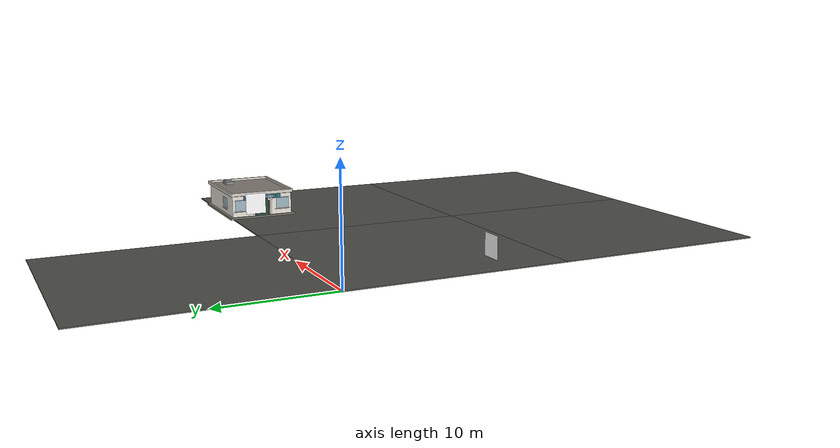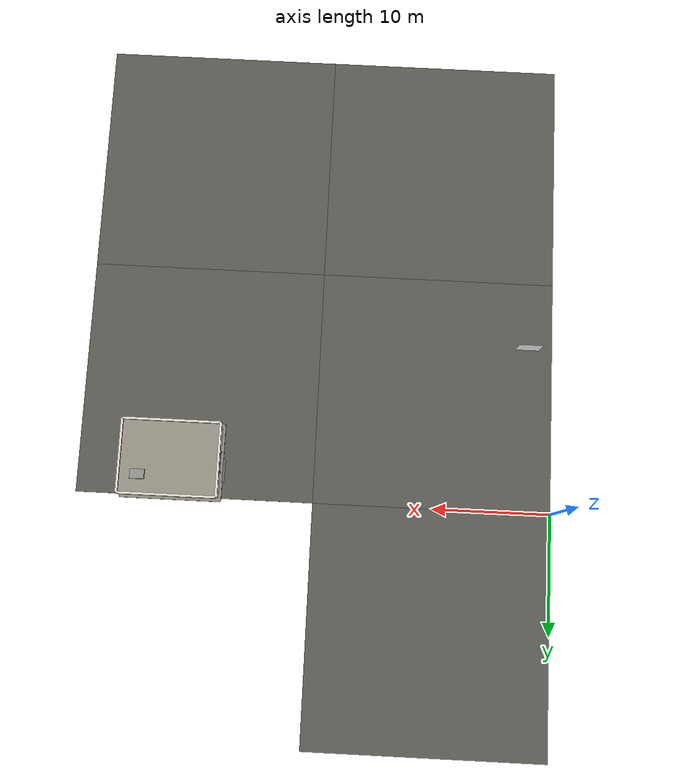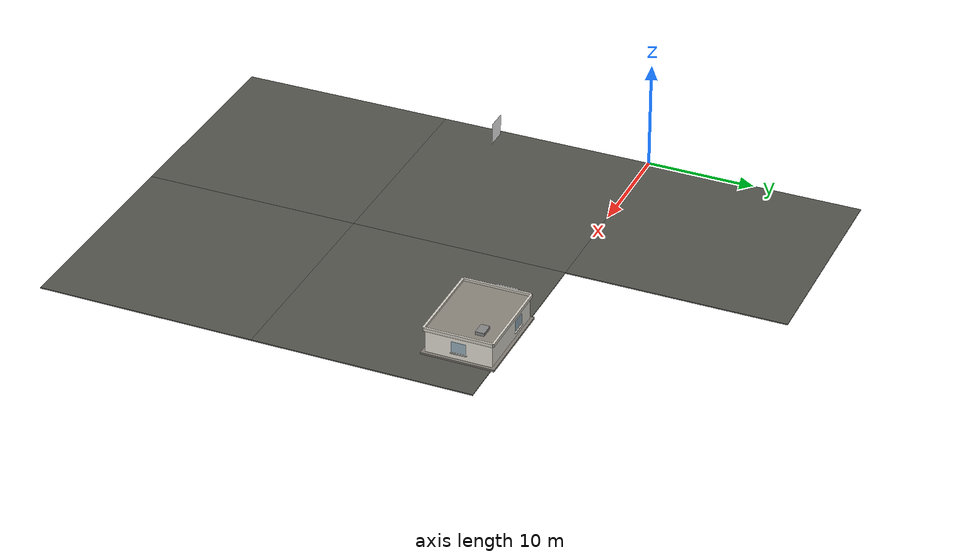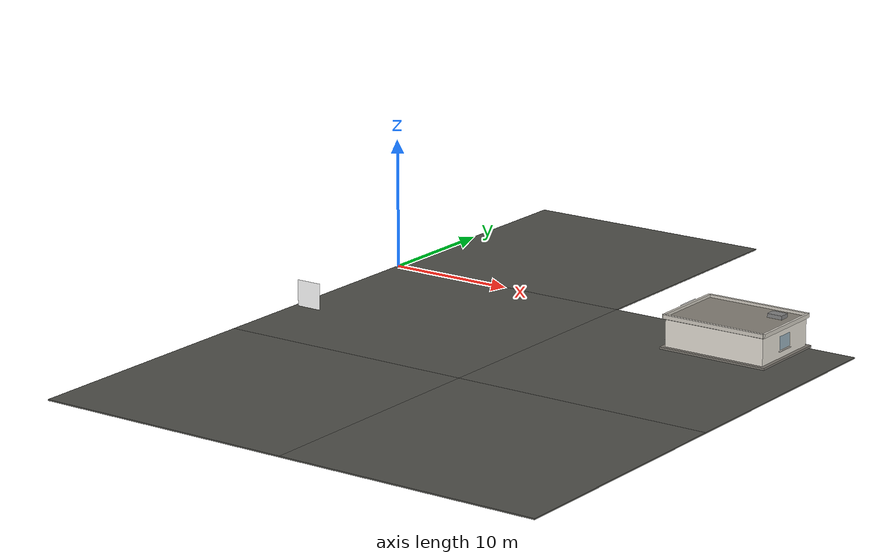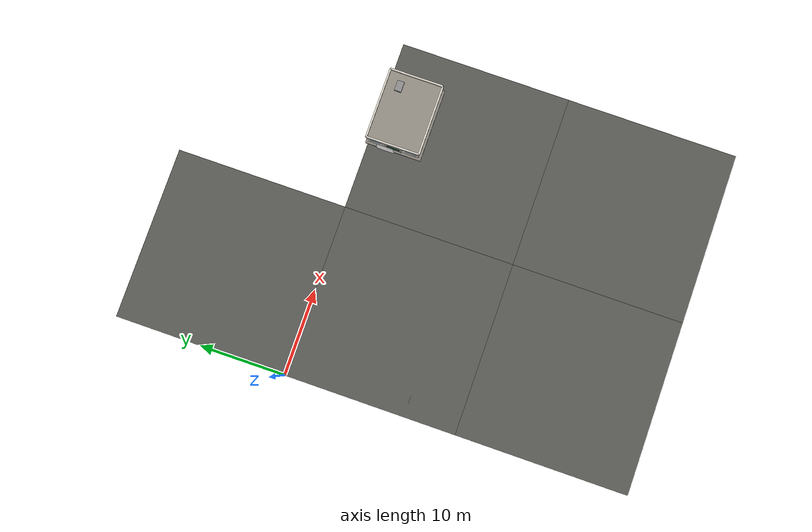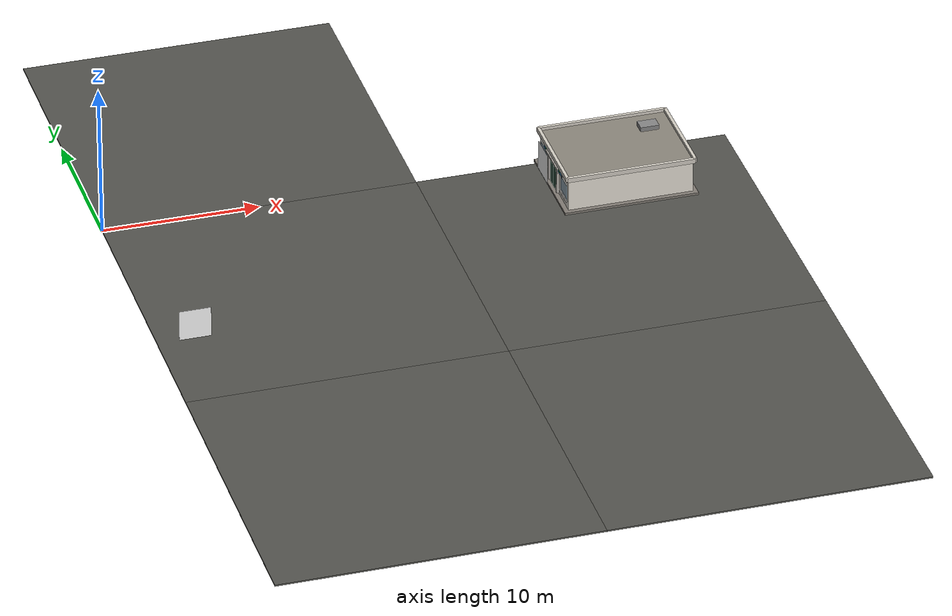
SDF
<sdf version="1.9">
 <world name="default">
  <include><name>qr7_fast_food</name><uri>model://qr7</uri><pose>2.2 -14 1.5 -1.5708 0 0</pose></include>
  <include>
   <name>qr10_community_clinic</name>
   <uri>model://qr10</uri>
   <pose>27.5 -2.2 1.5 0 -1.5708 0</pose>
  </include>
  <model name="asphalt_plane">
   <static>1</static>
   <link name="link">
    <collision name="collision"><geometry><box><size>20 20 0.1</size></box></geometry></collision>
    <visual name="visual">
     <cast_shadows>0</cast_shadows>
     <geometry><box><size>20 20 0.1</size></box></geometry>
     <material>
      <ambient>0.18 0.18 0.17 1</ambient>
      <diffuse>0.32 0.32 0.30 1</diffuse>
      <specular>0.05 0.05 0.05 1</specular>
      <emissive>0 0 0 1</emissive>
     </material>
    </visual>
    <velocity_decay><linear>0</linear><angular>0</angular></velocity_decay>
   </link>
   <pose>10 10 0 0 0 0</pose>
  </model>
  <model name="asphalt_plane_0">
   <static>1</static>
   <link name="link">
    <collision name="collision"><geometry><box><size>20 20 0.1</size></box></geometry></collision>
    <visual name="visual">
     <cast_shadows>0</cast_shadows>
     <geometry><box><size>20 20 0.1</size></box></geometry>
     <material>
      <ambient>0.18 0.18 0.17 1</ambient>
      <diffuse>0.32 0.32 0.30 1</diffuse>
      <specular>0.05 0.05 0.05 1</specular>
      <emissive>0 0 0 1</emissive>
     </material>
    </visual>
    <velocity_decay><linear>0</linear><angular>0</angular></velocity_decay>
   </link>
   <pose>10 -10 0 0 0 0</pose>
  </model>
  <model name="asphalt_plane_4">
   <static>1</static>
   <link name="link">
    <collision name="collision"><geometry><box><size>20 20 0.1</size></box></geometry></collision>
    <visual name="visual">
     <cast_shadows>0</cast_shadows>
     <geometry><box><size>20 20 0.1</size></box></geometry>
     <material>
      <ambient>0.18 0.18 0.17 1</ambient>
      <diffuse>0.32 0.32 0.30 1</diffuse>
      <specular>0.05 0.05 0.05 1</specular>
      <emissive>0 0 0 1</emissive>
     </material>
    </visual>
    <velocity_decay><linear>0</linear><angular>0</angular></velocity_decay>
   </link>
   <pose>10 -30 0 0 0 0</pose>
  </model>
  <model name="asphalt_plane_5">
   <static>1</static>
   <link name="link">
    <collision name="collision"><geometry><box><size>20 20 0.1</size></box></geometry></collision>
    <visual name="visual">
     <cast_shadows>0</cast_shadows>
     <geometry><box><size>20 20 0.1</size></box></geometry>
     <material>
      <ambient>0.18 0.18 0.17 1</ambient>
      <diffuse>0.32 0.32 0.30 1</diffuse>
      <specular>0.05 0.05 0.05 1</specular>
      <emissive>0 0 0 1</emissive>
     </material>
    </visual>
    <velocity_decay><linear>0</linear><angular>0</angular></velocity_decay>
   </link>
   <pose>30 -30 0 0 0 0</pose>
  </model>
  <model name="asphalt_plane_7">
   <static>1</static>
   <link name="link">
    <collision name="collision"><geometry><box><size>20 20 0.1</size></box></geometry></collision>
    <visual name="visual">
     <cast_shadows>0</cast_shadows>
     <geometry><box><size>20 20 0.1</size></box></geometry>
     <material>
      <ambient>0.18 0.18 0.17 1</ambient>
      <diffuse>0.32 0.32 0.30 1</diffuse>
      <specular>0.05 0.05 0.05 1</specular>
      <emissive>0 0 0 1</emissive>
     </material>
    </visual>
    <velocity_decay><linear>0</linear><angular>0</angular></velocity_decay>
   </link>
   <pose>30 -10 0 0 0 0</pose>
  </model>
  <model name="community_clinic">
   <static>true</static>
   <pose>32.0 -3.0 0 0 0 3.14159</pose>
   <link name="clinic_link">
    <visual name="foundation_visual">
     <pose>0 0 0.1 0 0 0</pose>
     <geometry><box><size>8.6 6.6 0.2</size></box></geometry>
     <material>
      <ambient>0.45 0.43 0.40 1</ambient>
      <diffuse>0.50 0.48 0.45 1</diffuse>
      <specular>0.05 0.05 0.05 1</specular>
     </material>
    </visual>
    <collision name="foundation_collision">
     <pose>0 0 0.1 0 0 0</pose>
     <geometry><box><size>8.6 6.6 0.2</size></box></geometry>
    </collision>
    <visual name="building_visual">
     <pose>0 0 1.2 0 0 0</pose>
     <geometry><box><size>8.0 6.0 2.2</size></box></geometry>
     <material>
      <ambient>0.88 0.86 0.82 1</ambient>
      <diffuse>0.90 0.88 0.84 1</diffuse>
      <specular>0.04 0.04 0.04 1</specular>
     </material>
    </visual>
    <collision name="building_collision">
     <pose>0 0 1.2 0 0 0</pose>
     <geometry><box><size>8.0 6.0 2.2</size></box></geometry>
    </collision>
    <visual name="parapet_front">
     <pose>0 3.1 2.45 0 0 0</pose>
     <geometry><box><size>8.2 0.2 0.3</size></box></geometry>
     <material><ambient>0.80 0.78 0.74 1</ambient><diffuse>0.82 0.80 0.76 1</diffuse></material>
    </visual>
    <visual name="parapet_back">
     <pose>0 -3.1 2.45 0 0 0</pose>
     <geometry><box><size>8.2 0.2 0.3</size></box></geometry>
     <material><ambient>0.80 0.78 0.74 1</ambient><diffuse>0.82 0.80 0.76 1</diffuse></material>
    </visual>
    <visual name="parapet_left">
     <pose>-4.1 0 2.45 0 0 0</pose>
     <geometry><box><size>0.2 6.2 0.3</size></box></geometry>
     <material><ambient>0.80 0.78 0.74 1</ambient><diffuse>0.82 0.80 0.76 1</diffuse></material>
    </visual>
    <visual name="parapet_right">
     <pose>4.1 0 2.45 0 0 0</pose>
     <geometry><box><size>0.2 6.2 0.3</size></box></geometry>
     <material><ambient>0.80 0.78 0.74 1</ambient><diffuse>0.82 0.80 0.76 1</diffuse></material>
    </visual>
    <visual name="roof_slab">
     <pose>0 0 2.32 0 0 0</pose>
     <geometry><box><size>8.2 6.2 0.14</size></box></geometry>
     <material><ambient>0.52 0.50 0.46 1</ambient><diffuse>0.54 0.52 0.48 1</diffuse></material>
    </visual>
    <visual name="canopy_slab">
     <pose>3.6 0 2.05 0 0 0</pose>
     <geometry><box><size>1.2 2.4 0.12</size></box></geometry>
     <material><ambient>0.75 0.73 0.70 1</ambient><diffuse>0.77 0.75 0.72 1</diffuse></material>
    </visual>
    <visual name="canopy_pillar_left">
     <pose>4.05 0.85 1.05 0 0 0</pose>
     <geometry><box><size>0.15 0.15 2.1</size></box></geometry>
     <material><ambient>0.82 0.80 0.77 1</ambient><diffuse>0.84 0.82 0.79 1</diffuse></material>
    </visual>
    <visual name="canopy_pillar_right">
     <pose>4.05 -0.85 1.05 0 0 0</pose>
     <geometry><box><size>0.15 0.15 2.1</size></box></geometry>
     <material><ambient>0.82 0.80 0.77 1</ambient><diffuse>0.84 0.82 0.79 1</diffuse></material>
    </visual>
    <visual name="door_frame">
     <pose>4.02 0 1.0 0 0 0</pose>
     <geometry><box><size>0.06 1.5 2.05</size></box></geometry>
     <material><ambient>0.20 0.18 0.16 1</ambient><diffuse>0.22 0.20 0.18 1</diffuse></material>
    </visual>
    <visual name="door_left">
     <pose>4.04 0.30 0.95 0 0 0</pose>
     <geometry><box><size>0.05 0.62 1.90</size></box></geometry>
     <material><ambient>0.14 0.26 0.20 1</ambient><diffuse>0.16 0.28 0.22 1</diffuse></material>
    </visual>
    <visual name="door_right">
     <pose>4.04 -0.30 0.95 0 0 0</pose>
     <geometry><box><size>0.05 0.62 1.90</size></box></geometry>
     <material><ambient>0.14 0.26 0.20 1</ambient><diffuse>0.16 0.28 0.22 1</diffuse></material>
    </visual>
    <visual name="door_transom">
     <pose>4.04 0 1.97 0 0 0</pose>
     <geometry><box><size>0.04 1.30 0.20</size></box></geometry>
     <material><ambient>0.55 0.70 0.75 0.65</ambient><diffuse>0.55 0.70 0.75 0.65</diffuse></material>
    </visual>
    <visual name="fw1_glass">
     <pose>4.02 2.10 1.30 0 0 0</pose>
     <geometry><box><size>0.04 1.30 1.00</size></box></geometry>
     <material><ambient>0.42 0.60 0.72 0.55</ambient><diffuse>0.42 0.60 0.72 0.55</diffuse></material>
    </visual>
    <visual name="fw1_frame_top">
     <pose>4.04 2.10 1.86 0 0 0</pose>
     <geometry><box><size>0.05 1.36 0.06</size></box></geometry>
     <material><ambient>0.92 0.92 0.90 1</ambient><diffuse>0.94 0.94 0.92 1</diffuse></material>
    </visual>
    <visual name="fw1_frame_bot">
     <pose>4.04 2.10 0.76 0 0 0</pose>
     <geometry><box><size>0.05 1.36 0.06</size></box></geometry>
     <material><ambient>0.92 0.92 0.90 1</ambient><diffuse>0.94 0.94 0.92 1</diffuse></material>
    </visual>
    <visual name="fw1_sill">
     <pose>4.06 2.10 0.71 0 0 0</pose>
     <geometry><box><size>0.12 1.50 0.05</size></box></geometry>
     <material><ambient>0.80 0.78 0.75 1</ambient><diffuse>0.82 0.80 0.77 1</diffuse></material>
    </visual>
    <visual name="fw2_glass">
     <pose>4.02 -2.10 1.30 0 0 0</pose>
     <geometry><box><size>0.04 1.30 1.00</size></box></geometry>
     <material><ambient>0.42 0.60 0.72 0.55</ambient><diffuse>0.42 0.60 0.72 0.55</diffuse></material>
    </visual>
    <visual name="fw2_frame_top">
     <pose>4.04 -2.10 1.86 0 0 0</pose>
     <geometry><box><size>0.05 1.36 0.06</size></box></geometry>
     <material><ambient>0.92 0.92 0.90 1</ambient><diffuse>0.94 0.94 0.92 1</diffuse></material>
    </visual>
    <visual name="fw2_frame_bot">
     <pose>4.04 -2.10 0.76 0 0 0</pose>
     <geometry><box><size>0.05 1.36 0.06</size></box></geometry>
     <material><ambient>0.92 0.92 0.90 1</ambient><diffuse>0.94 0.94 0.92 1</diffuse></material>
    </visual>
    <visual name="fw2_sill">
     <pose>4.06 -2.10 0.71 0 0 0</pose>
     <geometry><box><size>0.12 1.50 0.05</size></box></geometry>
     <material><ambient>0.80 0.78 0.75 1</ambient><diffuse>0.82 0.80 0.77 1</diffuse></material>
    </visual>
    <visual name="bw1_glass">
     <pose>1.5 -3.03 1.30 0 0 0</pose>
     <geometry><box><size>1.30 0.04 1.00</size></box></geometry>
     <material><ambient>0.42 0.60 0.72 0.55</ambient><diffuse>0.42 0.60 0.72 0.55</diffuse></material>
    </visual>
    <visual name="bw1_sill">
     <pose>1.5 -3.06 0.71 0 0 0</pose>
     <geometry><box><size>1.50 0.12 0.05</size></box></geometry>
     <material><ambient>0.80 0.78 0.75 1</ambient><diffuse>0.82 0.80 0.77 1</diffuse></material>
    </visual>
    <visual name="lw1_glass">
     <pose>-4.03 0 1.30 0 0 0</pose>
     <geometry><box><size>0.04 1.30 1.00</size></box></geometry>
     <material><ambient>0.42 0.60 0.72 0.55</ambient><diffuse>0.42 0.60 0.72 0.55</diffuse></material>
    </visual>
    <visual name="lw1_sill">
     <pose>-4.06 0 0.71 0 0 0</pose>
     <geometry><box><size>0.12 1.50 0.05</size></box></geometry>
     <material><ambient>0.80 0.78 0.75 1</ambient><diffuse>0.82 0.80 0.77 1</diffuse></material>
    </visual>
    <visual name="sign_bracket">
     <pose>4.05 0 2.10 0 0 0</pose>
     <geometry><box><size>0.06 3.8 0.55</size></box></geometry>
     <material><ambient>0.30 0.32 0.34 1</ambient><diffuse>0.32 0.34 0.36 1</diffuse></material>
    </visual>
    <visual name="sign_face">
     <pose>4.08 0 2.10 0 0 0</pose>
     <geometry><box><size>0.04 3.6 0.45</size></box></geometry>
     <material><ambient>0.18 0.45 0.65 1</ambient><diffuse>0.20 0.48 0.68 1</diffuse></material>
    </visual>
    <visual name="cross_h">
     <pose>4.10 1.40 2.10 0 0 0</pose>
     <geometry><box><size>0.02 0.36 0.12</size></box></geometry>
     <material>
      <ambient>0.06 0.32 0.10 1</ambient>
      <diffuse>0.10 0.60 0.20 1</diffuse>
      <emissive>0.04 0.18 0.06 1</emissive>
     </material>
    </visual>
    <visual name="cross_v">
     <pose>4.10 1.40 2.10 0 0 0</pose>
     <geometry><box><size>0.02 0.12 0.36</size></box></geometry>
     <material>
      <ambient>0.06 0.32 0.10 1</ambient>
      <diffuse>0.10 0.60 0.20 1</diffuse>
      <emissive>0.04 0.18 0.06 1</emissive>
     </material>
    </visual>
    <visual name="pharmacy_cross_door_h">
     <pose>4.10 -1.40 2.10 0 0 0</pose>
     <geometry><box><size>0.02 0.36 0.12</size></box></geometry>
     <material>
      <ambient>0.06 0.32 0.10 1</ambient>
      <diffuse>0.10 0.60 0.20 1</diffuse>
      <emissive>0.04 0.18 0.06 1</emissive>
     </material>
    </visual>
    <visual name="pharmacy_cross_door_v">
     <pose>4.10 -1.40 2.10 0 0 0</pose>
     <geometry><box><size>0.02 0.12 0.36</size></box></geometry>
     <material>
      <ambient>0.06 0.32 0.10 1</ambient>
      <diffuse>0.10 0.60 0.20 1</diffuse>
      <emissive>0.04 0.18 0.06 1</emissive>
     </material>
    </visual>
    <visual name="pharmacy_rx_plaque">
     <pose>4.08 0.80 1.85 0 0 0</pose>
     <geometry><box><size>0.04 0.42 0.42</size></box></geometry>
     <material>
      <ambient>0.95 0.95 0.92 1</ambient>
      <diffuse>0.98 0.98 0.96 1</diffuse>
      <emissive>0.20 0.55 0.25 1</emissive>
     </material>
    </visual>
    <visual name="hvac_body">
     <pose>-2.5 -1.5 2.55 0 0 0</pose>
     <geometry><box><size>1.2 0.8 0.30</size></box></geometry>
     <material><ambient>0.48 0.48 0.48 1</ambient><diffuse>0.52 0.52 0.52 1</diffuse></material>
    </visual>
    <inertial>
     <mass>5000</mass>
     <inertia><ixx>1000</ixx><ixy>0</ixy><ixz>0</ixz><iyy>1000</iyy><iyz>0</iyz><izz>1000</izz></inertia>
    </inertial>
   </link>
  </model>
 </world>
</sdf>
